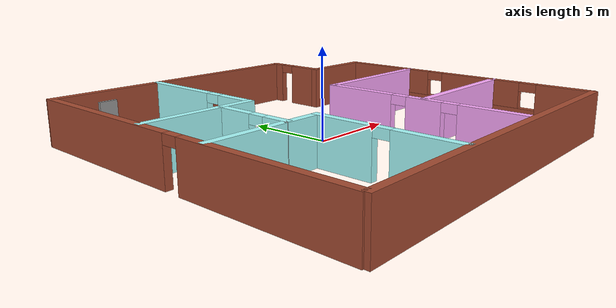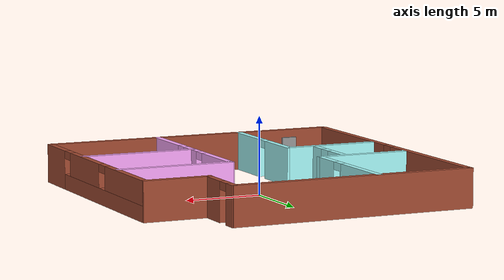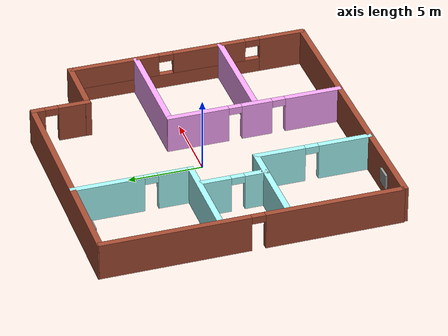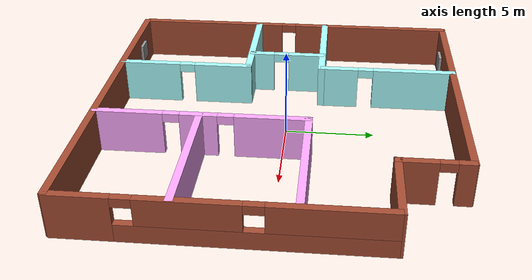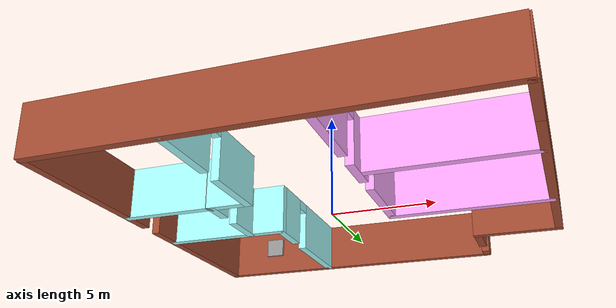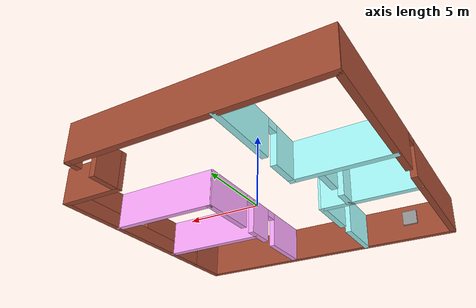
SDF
<?xml version='1.0'?>
<sdf version='1.6'>
  <model name='Building'>
    <pose frame=''>0.269532 -0.333455 0 0 -0 0</pose>
    <link name='Wall_1'>
      <collision name='Wall_1_Collision'>
        <geometry>
          <box>
            <size>16 0.4 2.5</size>
          </box>
        </geometry>
        <pose frame=''>0 0 1.25 0 -0 0</pose>
      </collision>
      <visual name='Wall_1_Visual'>
        <pose frame=''>0 0 1.25 0 -0 0</pose>
        <geometry>
          <box>
            <size>16 0.4 2.5</size>
          </box>
        </geometry>
        <material>
          <script>
            <uri>file://media/materials/scripts/gazebo.material</uri>
            <name>Gazebo/Bricks</name>
          </script>
          <ambient>1 1 1 1</ambient>
        </material>
        <meta>
          <layer>0</layer>
        </meta>
      </visual>
      <pose frame=''>-2.07774 9.96209 0 0 -0 3.14159</pose>
    </link>
    <link name='Wall_12'>
      <collision name='Wall_12_Collision'>
        <geometry>
          <box>
            <size>4.5 0.4 2.5</size>
          </box>
        </geometry>
        <pose frame=''>0 0 1.25 0 -0 0</pose>
      </collision>
      <visual name='Wall_12_Visual'>
        <pose frame=''>0 0 1.25 0 -0 0</pose>
        <geometry>
          <box>
            <size>4.5 0.4 2.5</size>
          </box>
        </geometry>
        <material>
          <script>
            <uri>file://media/materials/scripts/gazebo.material</uri>
            <name>Gazebo/Bricks</name>
          </script>
          <ambient>1 1 1 1</ambient>
        </material>
        <meta>
          <layer>0</layer>
        </meta>
      </visual>
      <pose frame=''>7.82092 6.27346 0 0 -0 3.14159</pose>
    </link>
    <link name='Wall_16'>
      <pose frame=''>9.88147 -1.86854 0 0 -0 1.5708</pose>
      <visual name='Wall_16_Visual_0'>
        <pose frame=''>-6.60109 0 1.25 0 -0 0</pose>
        <geometry>
          <box>
            <size>3.19781 0.4 2.5</size>
          </box>
        </geometry>
        <material>
          <script>
            <uri>file://media/materials/scripts/gazebo.material</uri>
            <name>Gazebo/Bricks</name>
          </script>
          <ambient>1 1 1 1</ambient>
        </material>
        <meta>
          <layer>0</layer>
        </meta>
      </visual>
      <collision name='Wall_16_Collision_0'>
        <geometry>
          <box>
            <size>3.19781 0.4 2.5</size>
          </box>
        </geometry>
        <pose frame=''>-6.60109 0 1.25 0 -0 0</pose>
      </collision>
      <visual name='Wall_16_Visual_1'>
        <pose frame=''>1.59891 0 0.5 0 -0 0</pose>
        <geometry>
          <box>
            <size>13.2022 0.4 1</size>
          </box>
        </geometry>
        <material>
          <script>
            <uri>file://media/materials/scripts/gazebo.material</uri>
            <name>Gazebo/Bricks</name>
          </script>
          <ambient>1 1 1 1</ambient>
        </material>
        <meta>
          <layer>0</layer>
        </meta>
      </visual>
      <collision name='Wall_16_Collision_1'>
        <geometry>
          <box>
            <size>13.2022 0.4 1</size>
          </box>
        </geometry>
        <pose frame=''>1.59891 0 0.5 0 -0 0</pose>
      </collision>
      <visual name='Wall_16_Visual_2'>
        <pose frame=''>-1.4702 0 1.75 0 -0 0</pose>
        <geometry>
          <box>
            <size>5.06397 0.4 1.5</size>
          </box>
        </geometry>
        <material>
          <script>
            <uri>file://media/materials/scripts/gazebo.material</uri>
            <name>Gazebo/Bricks</name>
          </script>
          <ambient>1 1 1 1</ambient>
        </material>
        <meta>
          <layer>0</layer>
        </meta>
      </visual>
      <collision name='Wall_16_Collision_2'>
        <geometry>
          <box>
            <size>5.06397 0.4 1.5</size>
          </box>
        </geometry>
        <pose frame=''>-1.4702 0 1.75 0 -0 0</pose>
      </collision>
      <visual name='Wall_16_Visual_3'>
        <pose frame=''>5.13089 0 1.75 0 -0 0</pose>
        <geometry>
          <box>
            <size>6.13821 0.4 1.5</size>
          </box>
        </geometry>
        <material>
          <script>
            <uri>file://media/materials/scripts/gazebo.material</uri>
            <name>Gazebo/Bricks</name>
          </script>
          <ambient>1 1 1 1</ambient>
        </material>
        <meta>
          <layer>0</layer>
        </meta>
      </visual>
      <collision name='Wall_16_Collision_3'>
        <geometry>
          <box>
            <size>6.13821 0.4 1.5</size>
          </box>
        </geometry>
        <pose frame=''>5.13089 0 1.75 0 -0 0</pose>
      </collision>
      <visual name='Wall_16_Visual_4'>
        <pose frame=''>-4.50219 0 2.25 0 -0 0</pose>
        <geometry>
          <box>
            <size>1 0.4 0.5</size>
          </box>
        </geometry>
        <material>
          <script>
            <uri>file://media/materials/scripts/gazebo.material</uri>
            <name>Gazebo/Bricks</name>
          </script>
          <ambient>1 1 1 1</ambient>
        </material>
        <meta>
          <layer>0</layer>
        </meta>
      </visual>
      <collision name='Wall_16_Collision_4'>
        <geometry>
          <box>
            <size>1 0.4 0.5</size>
          </box>
        </geometry>
        <pose frame=''>-4.50219 0 2.25 0 -0 0</pose>
      </collision>
      <visual name='Wall_16_Visual_5'>
        <pose frame=''>1.56178 0 2.25 0 -0 0</pose>
        <geometry>
          <box>
            <size>1 0.4 0.5</size>
          </box>
        </geometry>
        <material>
          <script>
            <uri>file://media/materials/scripts/gazebo.material</uri>
            <name>Gazebo/Bricks</name>
          </script>
          <ambient>1 1 1 1</ambient>
        </material>
        <meta>
          <layer>0</layer>
        </meta>
      </visual>
      <collision name='Wall_16_Collision_5'>
        <geometry>
          <box>
            <size>1 0.4 0.5</size>
          </box>
        </geometry>
        <pose frame=''>1.56178 0 2.25 0 -0 0</pose>
      </collision>
    </link>
    <link name='Wall_20'>
      <pose frame=''>-3.68853 6.13145 0 0 0 -1.5708</pose>
      <visual name='Wall_20_Visual_0'>
        <pose frame=''>-1.57293 0 1.25 0 -0 0</pose>
        <geometry>
          <box>
            <size>4.85414 0.4 2.5</size>
          </box>
        </geometry>
        <material>
          <script>
            <uri>file://media/materials/scripts/gazebo.material</uri>
            <name>Gazebo/Grey</name>
          </script>
          <ambient>0.666667 1 1 1</ambient>
        </material>
        <meta>
          <layer>0</layer>
        </meta>
      </visual>
      <collision name='Wall_20_Collision_0'>
        <geometry>
          <box>
            <size>4.85414 0.4 2.5</size>
          </box>
        </geometry>
        <pose frame=''>-1.57293 0 1.25 0 -0 0</pose>
      </collision>
      <visual name='Wall_20_Visual_1'>
        <pose frame=''>2.87707 0 1.25 0 -0 0</pose>
        <geometry>
          <box>
            <size>2.24586 0.4 2.5</size>
          </box>
        </geometry>
        <material>
          <script>
            <uri>file://media/materials/scripts/gazebo.material</uri>
            <name>Gazebo/Grey</name>
          </script>
          <ambient>0.666667 1 1 1</ambient>
        </material>
        <meta>
          <layer>0</layer>
        </meta>
      </visual>
      <collision name='Wall_20_Collision_1'>
        <geometry>
          <box>
            <size>2.24586 0.4 2.5</size>
          </box>
        </geometry>
        <pose frame=''>2.87707 0 1.25 0 -0 0</pose>
      </collision>
      <visual name='Wall_20_Visual_2'>
        <pose frame=''>1.30414 0 2.25 0 -0 0</pose>
        <geometry>
          <box>
            <size>0.9 0.4 0.5</size>
          </box>
        </geometry>
        <material>
          <script>
            <uri>file://media/materials/scripts/gazebo.material</uri>
            <name>Gazebo/Grey</name>
          </script>
          <ambient>0.666667 1 1 1</ambient>
        </material>
        <meta>
          <layer>0</layer>
        </meta>
      </visual>
      <collision name='Wall_20_Collision_2'>
        <geometry>
          <box>
            <size>0.9 0.4 0.5</size>
          </box>
        </geometry>
        <pose frame=''>1.30414 0 2.25 0 -0 0</pose>
      </collision>
    </link>
    <link name='Wall_22'>
      <collision name='Wall_22_Collision'>
        <geometry>
          <box>
            <size>6.5 0.4 2.5</size>
          </box>
        </geometry>
        <pose frame=''>0 0 1.25 0 -0 0</pose>
      </collision>
      <visual name='Wall_22_Visual'>
        <pose frame=''>0 0 1.25 0 -0 0</pose>
        <geometry>
          <box>
            <size>6.5 0.4 2.5</size>
          </box>
        </geometry>
        <material>
          <script>
            <uri>file://media/materials/scripts/gazebo.material</uri>
            <name>Gazebo/Grey</name>
          </script>
          <ambient>0.666667 1 1 1</ambient>
        </material>
        <meta>
          <layer>0</layer>
        </meta>
      </visual>
      <pose frame=''>-6.73853 2.18345 0 0 -0 3.14159</pose>
    </link>
    <link name='Wall_26'>
      <pose frame=''>-3.57114 -6.0289 0 0 0 -1.5708</pose>
      <visual name='Wall_26_Visual_0'>
        <pose frame=''>-2.26979 0 1.25 0 -0 0</pose>
        <geometry>
          <box>
            <size>3.46043 0.4 2.5</size>
          </box>
        </geometry>
        <material>
          <script>
            <uri>file://media/materials/scripts/gazebo.material</uri>
            <name>Gazebo/Grey</name>
          </script>
          <ambient>0.666667 1 1 1</ambient>
        </material>
        <meta>
          <layer>0</layer>
        </meta>
      </visual>
      <collision name='Wall_26_Collision_0'>
        <geometry>
          <box>
            <size>3.46043 0.4 2.5</size>
          </box>
        </geometry>
        <pose frame=''>-2.26979 0 1.25 0 -0 0</pose>
      </collision>
      <visual name='Wall_26_Visual_1'>
        <pose frame=''>2.18022 0 1.25 0 -0 0</pose>
        <geometry>
          <box>
            <size>3.63957 0.4 2.5</size>
          </box>
        </geometry>
        <material>
          <script>
            <uri>file://media/materials/scripts/gazebo.material</uri>
            <name>Gazebo/Grey</name>
          </script>
          <ambient>0.666667 1 1 1</ambient>
        </material>
        <meta>
          <layer>0</layer>
        </meta>
      </visual>
      <collision name='Wall_26_Collision_1'>
        <geometry>
          <box>
            <size>3.63957 0.4 2.5</size>
          </box>
        </geometry>
        <pose frame=''>2.18022 0 1.25 0 -0 0</pose>
      </collision>
      <visual name='Wall_26_Visual_2'>
        <pose frame=''>-0.089571 0 2.25 0 -0 0</pose>
        <geometry>
          <box>
            <size>0.9 0.4 0.5</size>
          </box>
        </geometry>
        <material>
          <script>
            <uri>file://media/materials/scripts/gazebo.material</uri>
            <name>Gazebo/Grey</name>
          </script>
          <ambient>0.666667 1 1 1</ambient>
        </material>
        <meta>
          <layer>0</layer>
        </meta>
      </visual>
      <collision name='Wall_26_Collision_2'>
        <geometry>
          <box>
            <size>0.9 0.4 0.5</size>
          </box>
        </geometry>
        <pose frame=''>-0.089571 0 2.25 0 -0 0</pose>
      </collision>
    </link>
    <link name='Wall_28'>
      <collision name='Wall_28_Collision'>
        <geometry>
          <box>
            <size>6.5 0.4 2.5</size>
          </box>
        </geometry>
        <pose frame=''>0 0 1.25 0 -0 0</pose>
      </collision>
      <visual name='Wall_28_Visual'>
        <pose frame=''>0 0 1.25 0 -0 0</pose>
        <geometry>
          <box>
            <size>6.5 0.4 2.5</size>
          </box>
        </geometry>
        <material>
          <script>
            <uri>file://media/materials/scripts/gazebo.material</uri>
            <name>Gazebo/Grey</name>
          </script>
          <ambient>0.666667 1 1 1</ambient>
        </material>
        <meta>
          <layer>0</layer>
        </meta>
      </visual>
      <pose frame=''>-6.77241 -2.2283 0 0 -0 0</pose>
    </link>
    <link name='Wall_3'>
      <pose frame=''>-9.88147 0.085654 0 0 -0 1.5708</pose>
      <visual name='Wall_3_Visual_0'>
        <pose frame=''>-5.39114 0 1.25 0 -0 0</pose>
        <geometry>
          <box>
            <size>9.21772 0.4 2.5</size>
          </box>
        </geometry>
        <material>
          <script>
            <uri>file://media/materials/scripts/gazebo.material</uri>
            <name>Gazebo/Bricks</name>
          </script>
          <ambient>1 1 1 1</ambient>
        </material>
        <meta>
          <layer>0</layer>
        </meta>
      </visual>
      <collision name='Wall_3_Collision_0'>
        <geometry>
          <box>
            <size>9.21772 0.4 2.5</size>
          </box>
        </geometry>
        <pose frame=''>-5.39114 0 1.25 0 -0 0</pose>
      </collision>
      <visual name='Wall_3_Visual_1'>
        <pose frame=''>5.05886 0 1.25 0 -0 0</pose>
        <geometry>
          <box>
            <size>9.88228 0.4 2.5</size>
          </box>
        </geometry>
        <material>
          <script>
            <uri>file://media/materials/scripts/gazebo.material</uri>
            <name>Gazebo/Bricks</name>
          </script>
          <ambient>1 1 1 1</ambient>
        </material>
        <meta>
          <layer>0</layer>
        </meta>
      </visual>
      <collision name='Wall_3_Collision_1'>
        <geometry>
          <box>
            <size>9.88228 0.4 2.5</size>
          </box>
        </geometry>
        <pose frame=''>5.05886 0 1.25 0 -0 0</pose>
      </collision>
      <visual name='Wall_3_Visual_2'>
        <pose frame=''>-0.33228 0 2.25 0 -0 0</pose>
        <geometry>
          <box>
            <size>0.9 0.4 0.5</size>
          </box>
        </geometry>
        <material>
          <script>
            <uri>file://media/materials/scripts/gazebo.material</uri>
            <name>Gazebo/Bricks</name>
          </script>
          <ambient>1 1 1 1</ambient>
        </material>
        <meta>
          <layer>0</layer>
        </meta>
      </visual>
      <collision name='Wall_3_Collision_2'>
        <geometry>
          <box>
            <size>0.9 0.4 0.5</size>
          </box>
        </geometry>
        <pose frame=''>-0.33228 0 2.25 0 -0 0</pose>
      </collision>
    </link>
    <link name='Wall_30'>
      <collision name='Wall_30_Collision'>
        <geometry>
          <box>
            <size>0.543475 0.15 2.5</size>
          </box>
        </geometry>
        <pose frame=''>0 0 1.25 0 -0 0</pose>
      </collision>
      <visual name='Wall_30_Visual'>
        <pose frame=''>0 0 1.25 0 -0 0</pose>
        <geometry>
          <box>
            <size>0.543475 0.15 2.5</size>
          </box>
        </geometry>
        <material>
          <script>
            <uri>file://media/materials/scripts/gazebo.material</uri>
            <name>Gazebo/Grey</name>
          </script>
          <ambient>1 1 1 1</ambient>
        </material>
        <meta>
          <layer>0</layer>
        </meta>
      </visual>
      <pose frame=''>-5.5127 -2.17491 0 0 -0 0.960308</pose>
    </link>
    <link name='Wall_31'>
      <pose frame=''>-5.39992 -0.02132 0 0 -0 1.5708</pose>
      <visual name='Wall_31_Visual_0'>
        <pose frame=''>-1.54953 0 1.25 0 -0 0</pose>
        <geometry>
          <box>
            <size>1.50094 0.4 2.5</size>
          </box>
        </geometry>
        <material>
          <script>
            <uri>file://media/materials/scripts/gazebo.material</uri>
            <name>Gazebo/Grey</name>
          </script>
          <ambient>0.666667 1 1 1</ambient>
        </material>
        <meta>
          <layer>0</layer>
        </meta>
      </visual>
      <collision name='Wall_31_Collision_0'>
        <geometry>
          <box>
            <size>1.50094 0.4 2.5</size>
          </box>
        </geometry>
        <pose frame=''>-1.54953 0 1.25 0 -0 0</pose>
      </collision>
      <visual name='Wall_31_Visual_1'>
        <pose frame=''>1.20047 0 1.25 0 -0 0</pose>
        <geometry>
          <box>
            <size>2.19906 0.4 2.5</size>
          </box>
        </geometry>
        <material>
          <script>
            <uri>file://media/materials/scripts/gazebo.material</uri>
            <name>Gazebo/Grey</name>
          </script>
          <ambient>0.666667 1 1 1</ambient>
        </material>
        <meta>
          <layer>0</layer>
        </meta>
      </visual>
      <collision name='Wall_31_Collision_1'>
        <geometry>
          <box>
            <size>2.19906 0.4 2.5</size>
          </box>
        </geometry>
        <pose frame=''>1.20047 0 1.25 0 -0 0</pose>
      </collision>
      <visual name='Wall_31_Visual_2'>
        <pose frame=''>-0.34906 0 2.25 0 -0 0</pose>
        <geometry>
          <box>
            <size>0.9 0.4 0.5</size>
          </box>
        </geometry>
        <material>
          <script>
            <uri>file://media/materials/scripts/gazebo.material</uri>
            <name>Gazebo/Grey</name>
          </script>
          <ambient>0.666667 1 1 1</ambient>
        </material>
        <meta>
          <layer>0</layer>
        </meta>
      </visual>
      <collision name='Wall_31_Collision_2'>
        <geometry>
          <box>
            <size>0.9 0.4 0.5</size>
          </box>
        </geometry>
        <pose frame=''>-0.34906 0 2.25 0 -0 0</pose>
      </collision>
    </link>
    <link name='Wall_33'>
      <pose frame=''>2.33747 -4.06916 0 0 -0 1.5708</pose>
      <visual name='Wall_33_Visual_0'>
        <pose frame=''>-4.03633 0 1.25 0 -0 0</pose>
        <geometry>
          <box>
            <size>3.92733 0.4 2.5</size>
          </box>
        </geometry>
        <material>
          <script>
            <uri>file://media/materials/scripts/gazebo.material</uri>
            <name>Gazebo/Grey</name>
          </script>
          <ambient>1 0.666667 1 1</ambient>
        </material>
        <meta>
          <layer>0</layer>
        </meta>
      </visual>
      <collision name='Wall_33_Collision_0'>
        <geometry>
          <box>
            <size>3.92733 0.4 2.5</size>
          </box>
        </geometry>
        <pose frame=''>-4.03633 0 1.25 0 -0 0</pose>
      </collision>
      <visual name='Wall_33_Visual_1'>
        <pose frame=''>-0.137613 0 1.25 0 -0 0</pose>
        <geometry>
          <box>
            <size>2.07011 0.4 2.5</size>
          </box>
        </geometry>
        <material>
          <script>
            <uri>file://media/materials/scripts/gazebo.material</uri>
            <name>Gazebo/Grey</name>
          </script>
          <ambient>1 0.666667 1 1</ambient>
        </material>
        <meta>
          <layer>0</layer>
        </meta>
      </visual>
      <collision name='Wall_33_Collision_1'>
        <geometry>
          <box>
            <size>2.07011 0.4 2.5</size>
          </box>
        </geometry>
        <pose frame=''>-0.137613 0 1.25 0 -0 0</pose>
      </collision>
      <visual name='Wall_33_Visual_2'>
        <pose frame=''>3.89872 0 1.25 0 -0 0</pose>
        <geometry>
          <box>
            <size>4.20256 0.4 2.5</size>
          </box>
        </geometry>
        <material>
          <script>
            <uri>file://media/materials/scripts/gazebo.material</uri>
            <name>Gazebo/Grey</name>
          </script>
          <ambient>1 0.666667 1 1</ambient>
        </material>
        <meta>
          <layer>0</layer>
        </meta>
      </visual>
      <collision name='Wall_33_Collision_2'>
        <geometry>
          <box>
            <size>4.20256 0.4 2.5</size>
          </box>
        </geometry>
        <pose frame=''>3.89872 0 1.25 0 -0 0</pose>
      </collision>
      <visual name='Wall_33_Visual_3'>
        <pose frame=''>-1.62267 0 2.25 0 -0 0</pose>
        <geometry>
          <box>
            <size>0.9 0.4 0.5</size>
          </box>
        </geometry>
        <material>
          <script>
            <uri>file://media/materials/scripts/gazebo.material</uri>
            <name>Gazebo/Grey</name>
          </script>
          <ambient>1 0.666667 1 1</ambient>
        </material>
        <meta>
          <layer>0</layer>
        </meta>
      </visual>
      <collision name='Wall_33_Collision_3'>
        <geometry>
          <box>
            <size>0.9 0.4 0.5</size>
          </box>
        </geometry>
        <pose frame=''>-1.62267 0 2.25 0 -0 0</pose>
      </collision>
      <visual name='Wall_33_Visual_4'>
        <pose frame=''>1.34744 0 2.25 0 -0 0</pose>
        <geometry>
          <box>
            <size>0.9 0.4 0.5</size>
          </box>
        </geometry>
        <material>
          <script>
            <uri>file://media/materials/scripts/gazebo.material</uri>
            <name>Gazebo/Grey</name>
          </script>
          <ambient>1 0.666667 1 1</ambient>
        </material>
        <meta>
          <layer>0</layer>
        </meta>
      </visual>
      <collision name='Wall_33_Collision_4'>
        <geometry>
          <box>
            <size>0.9 0.4 0.5</size>
          </box>
        </geometry>
        <pose frame=''>1.34744 0 2.25 0 -0 0</pose>
      </collision>
    </link>
    <link name='Wall_35'>
      <collision name='Wall_35_Collision'>
        <geometry>
          <box>
            <size>7.75 0.4 2.5</size>
          </box>
        </geometry>
        <pose frame=''>0 0 1.25 0 -0 0</pose>
      </collision>
      <visual name='Wall_35_Visual'>
        <pose frame=''>0 0 1.25 0 -0 0</pose>
        <geometry>
          <box>
            <size>7.75 0.4 2.5</size>
          </box>
        </geometry>
        <material>
          <script>
            <uri>file://media/materials/scripts/gazebo.material</uri>
            <name>Gazebo/Grey</name>
          </script>
          <ambient>1 0.666667 1 1</ambient>
        </material>
        <meta>
          <layer>0</layer>
        </meta>
      </visual>
      <pose frame=''>6.08824 1.75246 0 0 -0 3.14159</pose>
    </link>
    <link name='Wall_36'>
      <collision name='Wall_36_Collision'>
        <geometry>
          <box>
            <size>0.379904 0.15 2.5</size>
          </box>
        </geometry>
        <pose frame=''>0 0 1.25 0 -0 0</pose>
      </collision>
      <visual name='Wall_36_Visual'>
        <pose frame=''>0 0 1.25 0 -0 0</pose>
        <geometry>
          <box>
            <size>0.379904 0.15 2.5</size>
          </box>
        </geometry>
        <material>
          <script>
            <uri>file://media/materials/scripts/gazebo.material</uri>
            <name>Gazebo/Grey</name>
          </script>
          <ambient>1 1 1 1</ambient>
        </material>
        <meta>
          <layer>0</layer>
        </meta>
      </visual>
      <pose frame=''>2.34699 1.6452 0 0 0 -1.20275</pose>
    </link>
    <link name='Wall_38'>
      <collision name='Wall_38_Collision'>
        <geometry>
          <box>
            <size>7.75 0.4 2.5</size>
          </box>
        </geometry>
        <pose frame=''>0 0 1.25 0 -0 0</pose>
      </collision>
      <visual name='Wall_38_Visual'>
        <pose frame=''>0 0 1.25 0 -0 0</pose>
        <geometry>
          <box>
            <size>7.75 0.4 2.5</size>
          </box>
        </geometry>
        <material>
          <script>
            <uri>file://media/materials/scripts/gazebo.material</uri>
            <name>Gazebo/Grey</name>
          </script>
          <ambient>1 0.666667 1 1</ambient>
        </material>
        <meta>
          <layer>0</layer>
        </meta>
      </visual>
      <pose frame=''>6.14183 -4.14619 0 0 -0 3.14159</pose>
    </link>
    <link name='Wall_6'>
      <collision name='Wall_6_Collision'>
        <geometry>
          <box>
            <size>20 0.4 2.5</size>
          </box>
        </geometry>
        <pose frame=''>0 0 1.25 0 -0 0</pose>
      </collision>
      <visual name='Wall_6_Visual'>
        <pose frame=''>0 0 1.25 0 -0 0</pose>
        <geometry>
          <box>
            <size>20 0.4 2.5</size>
          </box>
        </geometry>
        <material>
          <script>
            <uri>file://media/materials/scripts/gazebo.material</uri>
            <name>Gazebo/Bricks</name>
          </script>
          <ambient>0.666667 1 1 1</ambient>
        </material>
        <meta>
          <layer>0</layer>
        </meta>
      </visual>
      <pose frame=''>-0.004723 -9.96209 0 0 -0 3.14159</pose>
    </link>
    <link name='Wall_9'>
      <pose frame=''>5.78731 8.10381 0 0 -0 1.5708</pose>
      <visual name='Wall_9_Visual_0'>
        <pose frame=''>-0.909282 0 1.25 0 -0 0</pose>
        <geometry>
          <box>
            <size>2.18144 0.4 2.5</size>
          </box>
        </geometry>
        <material>
          <script>
            <uri>file://media/materials/scripts/gazebo.material</uri>
            <name>Gazebo/Bricks</name>
          </script>
          <ambient>1 1 1 1</ambient>
        </material>
        <meta>
          <layer>0</layer>
        </meta>
      </visual>
      <collision name='Wall_9_Collision_0'>
        <geometry>
          <box>
            <size>2.18144 0.4 2.5</size>
          </box>
        </geometry>
        <pose frame=''>-0.909282 0 1.25 0 -0 0</pose>
      </collision>
      <visual name='Wall_9_Visual_1'>
        <pose frame=''>1.54072 0 1.25 0 -0 0</pose>
        <geometry>
          <box>
            <size>0.918564 0.4 2.5</size>
          </box>
        </geometry>
        <material>
          <script>
            <uri>file://media/materials/scripts/gazebo.material</uri>
            <name>Gazebo/Bricks</name>
          </script>
          <ambient>1 1 1 1</ambient>
        </material>
        <meta>
          <layer>0</layer>
        </meta>
      </visual>
      <collision name='Wall_9_Collision_1'>
        <geometry>
          <box>
            <size>0.918564 0.4 2.5</size>
          </box>
        </geometry>
        <pose frame=''>1.54072 0 1.25 0 -0 0</pose>
      </collision>
      <visual name='Wall_9_Visual_2'>
        <pose frame=''>0.631436 0 2.25 0 -0 0</pose>
        <geometry>
          <box>
            <size>0.9 0.4 0.5</size>
          </box>
        </geometry>
        <material>
          <script>
            <uri>file://media/materials/scripts/gazebo.material</uri>
            <name>Gazebo/Bricks</name>
          </script>
          <ambient>1 1 1 1</ambient>
        </material>
        <meta>
          <layer>0</layer>
        </meta>
      </visual>
      <collision name='Wall_9_Collision_2'>
        <geometry>
          <box>
            <size>0.9 0.4 0.5</size>
          </box>
        </geometry>
        <pose frame=''>0.631436 0 2.25 0 -0 0</pose>
      </collision>
    </link>
    <link name='Window_0'>
      <collision name='Window_0_Collision'>
        <geometry>
          <box>
            <size>1 0.17 1</size>
          </box>
        </geometry>
        <pose frame=''>0 0 0.5 0 -0 0</pose>
      </collision>
      <visual name='Window_0_Visual'>
        <pose frame=''>0 0 0.5 0 -0 0</pose>
        <geometry>
          <box>
            <size>1 0.17 1</size>
          </box>
        </geometry>
        <material>
          <script>
            <uri>file://media/materials/scripts/gazebo.material</uri>
            <name>Gazebo/Grey</name>
          </script>
        </material>
      </visual>
      <pose frame=''>-7.09667 9.5936 1 0 -0 0</pose>
    </link>
    <link name='Window_1'>
      <collision name='Window_1_Collision'>
        <geometry>
          <box>
            <size>1 0.17 1</size>
          </box>
        </geometry>
        <pose frame=''>0 0 0.5 0 -0 0</pose>
      </collision>
      <visual name='Window_1_Visual'>
        <pose frame=''>0 0 0.5 0 -0 0</pose>
        <geometry>
          <box>
            <size>1 0.17 1</size>
          </box>
        </geometry>
        <material>
          <script>
            <uri>file://media/materials/scripts/gazebo.material</uri>
            <name>Gazebo/Grey</name>
          </script>
        </material>
      </visual>
      <pose frame=''>-7.09653 -9.58854 1 0 -0 0</pose>
    </link>
    <static>1</static>
  </model>
</sdf>
